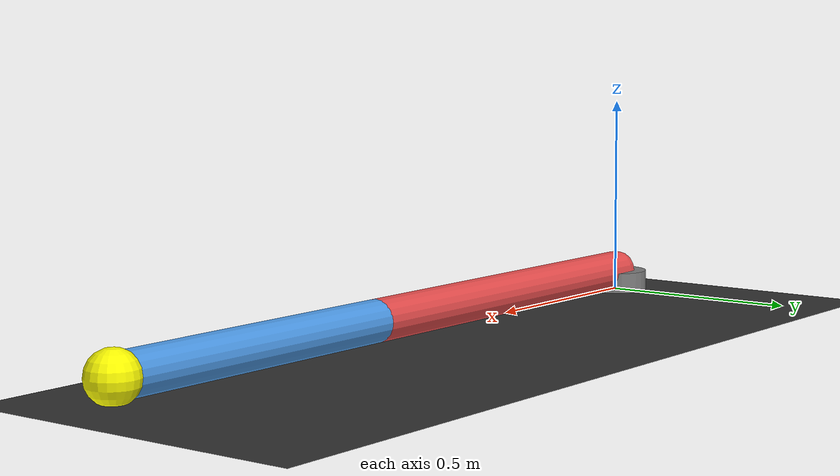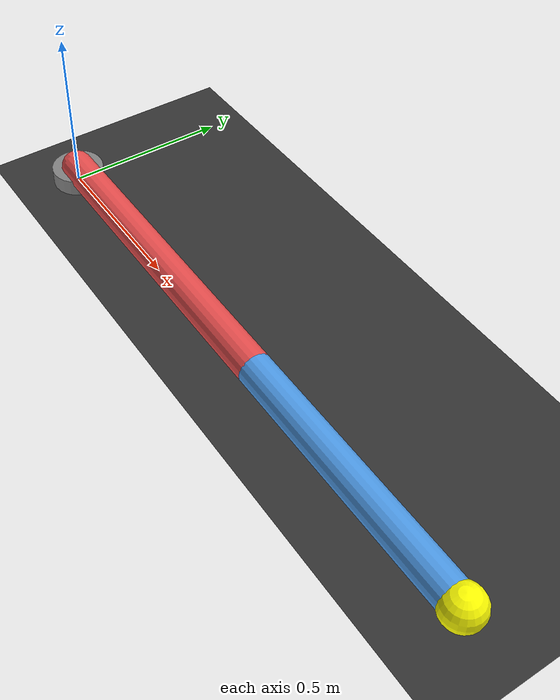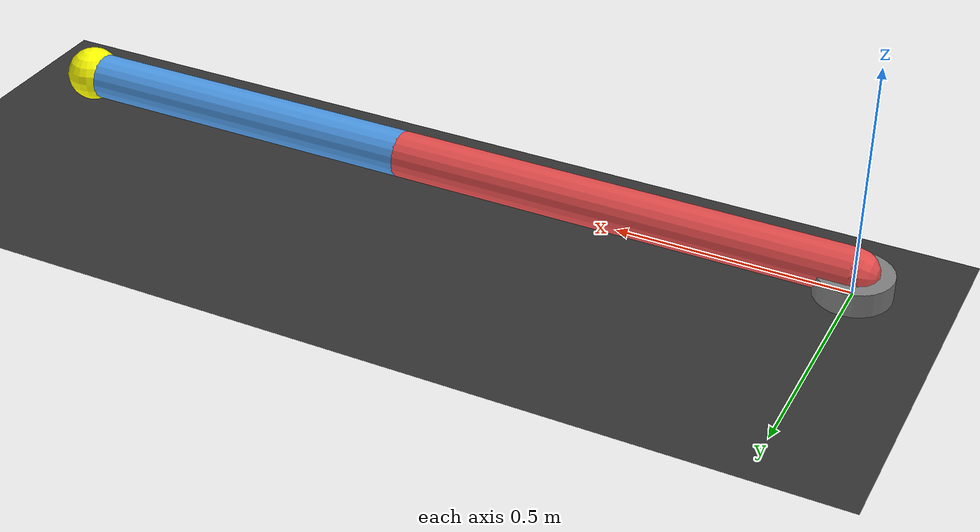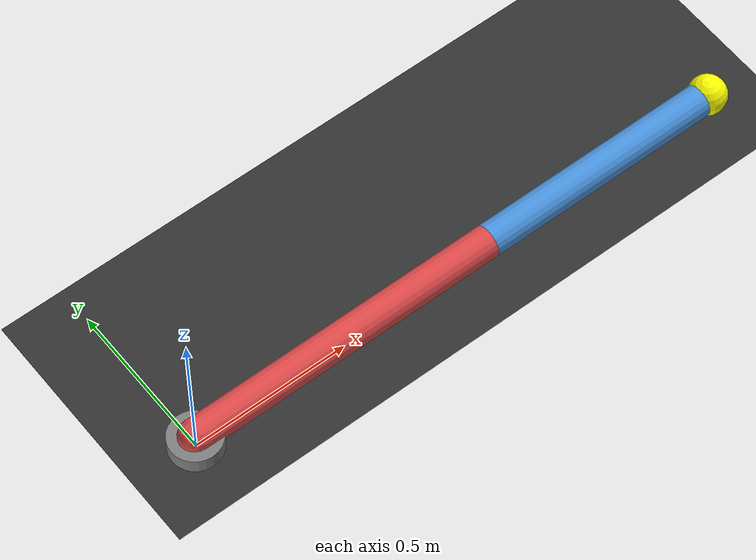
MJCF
<mujoco model="simple_2r_planar_arm">
  <!--
    Minimal 2-revolute-joint planar arm.
    Link lengths: L1 = 1.0 m, L2 = 0.8 m.
    Two revolute joints -> 2 DOF.
    Task space in the plane is (x, y) of the end-effector.
  -->
  <compiler angle="radian"/>
  <option timestep="0.01" gravity="0 0 0"/>

  <worldbody>
    <light diffuse="0.5 0.5 0.5" pos="0 0 3" dir="0 0 -1"/>
    <geom type="plane" size="2 2 0.1" rgba="0.2 0.2 0.2 1"/>

    <!-- Base / link 0 -->
    <body name="base" pos="0 0 0">
      <geom type="cylinder" size="0.08 0.05" rgba="0.5 0.5 0.5 1" euler="0 0 0"/>

      <!-- Joint 1: shoulder revolute about Z -->
      <body name="link1" pos="0 0 0.05">
        <joint name="joint1" type="hinge" axis="0 0 1" range="-3.14 3.14" damping="0.1"/>
        <geom type="capsule" fromto="0 0 0 1 0 0" size="0.05" rgba="0.9 0.3 0.3 1"/>

        <!-- Joint 2: elbow revolute about Z -->
        <body name="link2" pos="1 0 0">
          <joint name="joint2" type="hinge" axis="0 0 1" range="-3.14 3.14" damping="0.1"/>
          <geom type="capsule" fromto="0 0 0 0.8 0 0" size="0.05" rgba="0.3 0.6 0.9 1"/>

          <!-- End-effector marker -->
          <site name="ee" pos="0.8 0 0" size="0.06" rgba="1 1 0 1"/>
        </body>
      </body>
    </body>
  </worldbody>

  <actuator>
    <motor joint="joint1" gear="1" ctrlrange="-100 100"/>
    <motor joint="joint2" gear="1" ctrlrange="-100 100"/>
  </actuator>
</mujoco>
